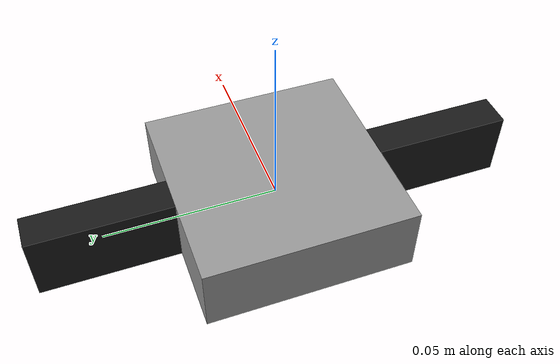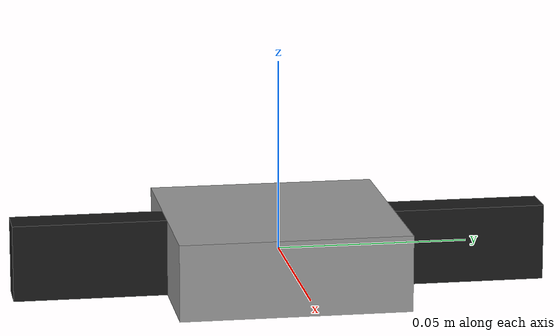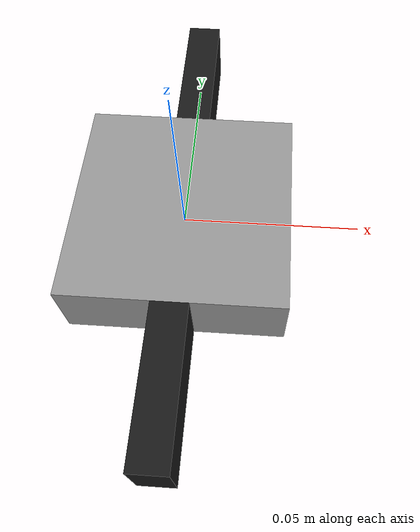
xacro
<?xml version="1.0"?>
<robot xmlns:xacro="http://www.ros.org/wiki/xacro" name="simple_gripper">

  <!-- Materials             -->
  <material name="gray">
    <color rgba="0.6 0.6 0.6 1.0"/>
  </material>

  <material name="black">
    <color rgba="0.1 0.1 0.1 1.0"/>
  </material>

  <!-- Base Link             -->
  <link name="gripper_base">
    <visual>
      <geometry>
        <box size="0.06 0.06 0.02"/>
      </geometry>
      <material name="gray"/>
    </visual>

    <collision>
      <geometry>
        <box size="0.06 0.06 0.02"/>
      </geometry>
      <surface>
        <friction>
          <ode>
            <mu>1.0</mu>
            <mu2>1.0</mu2>
          </ode>
        </friction>
      </surface>
    </collision>

    <inertial>
      <mass value="0.5"/>
      <origin xyz="0 0 0"/>
      <inertia
        ixx="0.001" ixy="0.0" ixz="0.0"
        iyy="0.001" iyz="0.0"
        izz="0.001"/>
    </inertial>
  </link>

  <!-- Left Finger           -->
  <link name="left_finger">
    <visual>
      <geometry>
        <box size="0.01 0.04 0.02"/>
      </geometry>
      <origin xyz="0 0.02 0"/>
      <material name="black"/>
    </visual>

    <collision>
      <geometry>
        <box size="0.01 0.04 0.02"/>
      </geometry>
      <origin xyz="0 0.02 0"/>
      <surface>
        <friction>
          <ode>
            <mu>2.0</mu>
            <mu2>2.0</mu2>
          </ode>
        </friction>
      </surface>
    </collision>

    <inertial>
      <mass value="0.1"/>
      <origin xyz="0 0.02 0"/>
      <inertia
        ixx="0.0001" ixy="0.0" ixz="0.0"
        iyy="0.0001" iyz="0.0"
        izz="0.0001"/>
    </inertial>
  </link>

  <!-- Right Finger          -->
  <link name="right_finger">
    <visual>
      <geometry>
        <box size="0.01 0.04 0.02"/>
      </geometry>
      <origin xyz="0 -0.02 0"/>
      <material name="black"/>
    </visual>

    <collision>
      <geometry>
        <box size="0.01 0.04 0.02"/>
      </geometry>
      <origin xyz="0 -0.02 0"/>
      <surface>
        <friction>
          <ode>
            <mu>2.0</mu>
            <mu2>2.0</mu2>
          </ode>
        </friction>
      </surface>
    </collision>

    <inertial>
      <mass value="0.1"/>
      <origin xyz="0 -0.02 0"/>
      <inertia
        ixx="0.0001" ixy="0.0" ixz="0.0"
        iyy="0.0001" iyz="0.0"
        izz="0.0001"/>
    </inertial>
  </link>

  <!-- Joints (Prismatic)    -->

  <joint name="left_finger_joint" type="prismatic">
    <parent link="gripper_base"/>
    <child link="left_finger"/>
    <origin xyz="0 0.03 0"/>
    <axis xyz="0 -1 0"/>
    <limit lower="0.0" upper="0.02" effort="20" velocity="0.1"/>
  </joint>

  <joint name="right_finger_joint" type="prismatic">
    <parent link="gripper_base"/>
    <child link="right_finger"/>
    <origin xyz="0 -0.03 0"/>
    <axis xyz="0 1 0"/>
    <limit lower="0.0" upper="0.02" effort="20" velocity="0.1"/>
  </joint>

  <!-- ros2_control Block    -->

<ros2_control name="IgnitionSystem" type="system">
  <hardware>
    <plugin>ign_ros2_control/IgnitionSystem</plugin>
  </hardware>

  <joint name="left_finger_joint">
    <command_interface name="position"/>
    <state_interface name="position"/>
  </joint>

  <joint name="right_finger_joint">
    <command_interface name="position"/>
    <state_interface name="position"/>
  </joint>
</ros2_control>

<gazebo>
  <plugin filename="libign_ros2_control-system.so"
          name="/home/rafie/Vision-Heroes-2026-test-mecanum/gripper/install/gripper_description/share/gripper_description/config/controllers.yaml"/>
</gazebo>

</robot>
